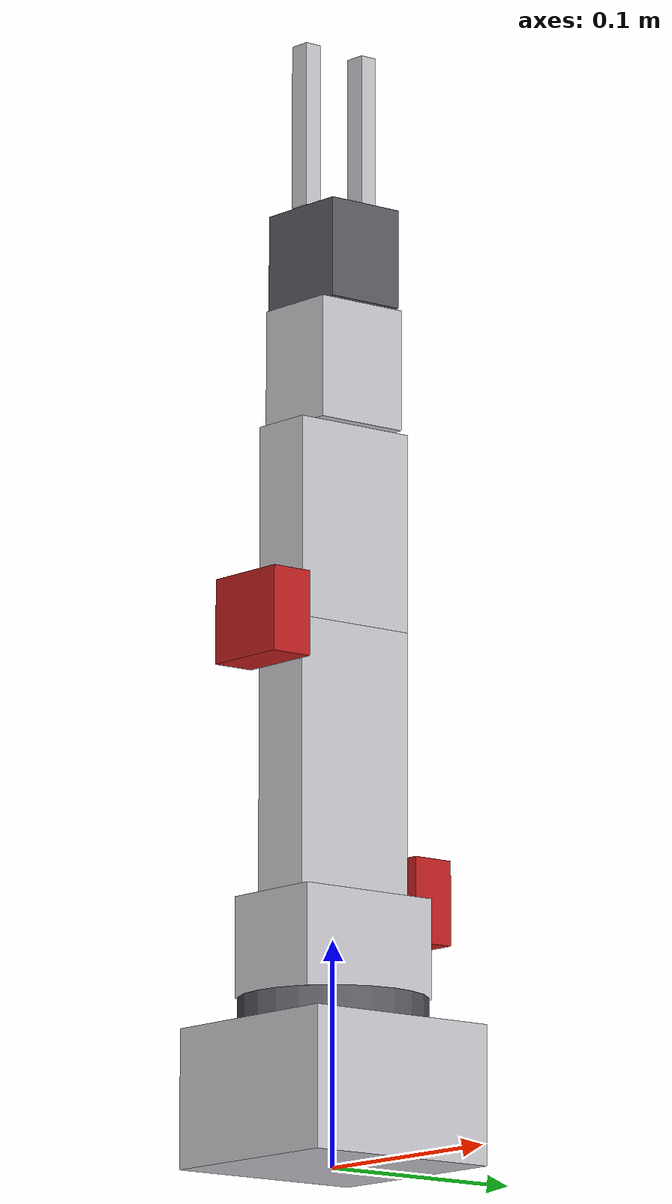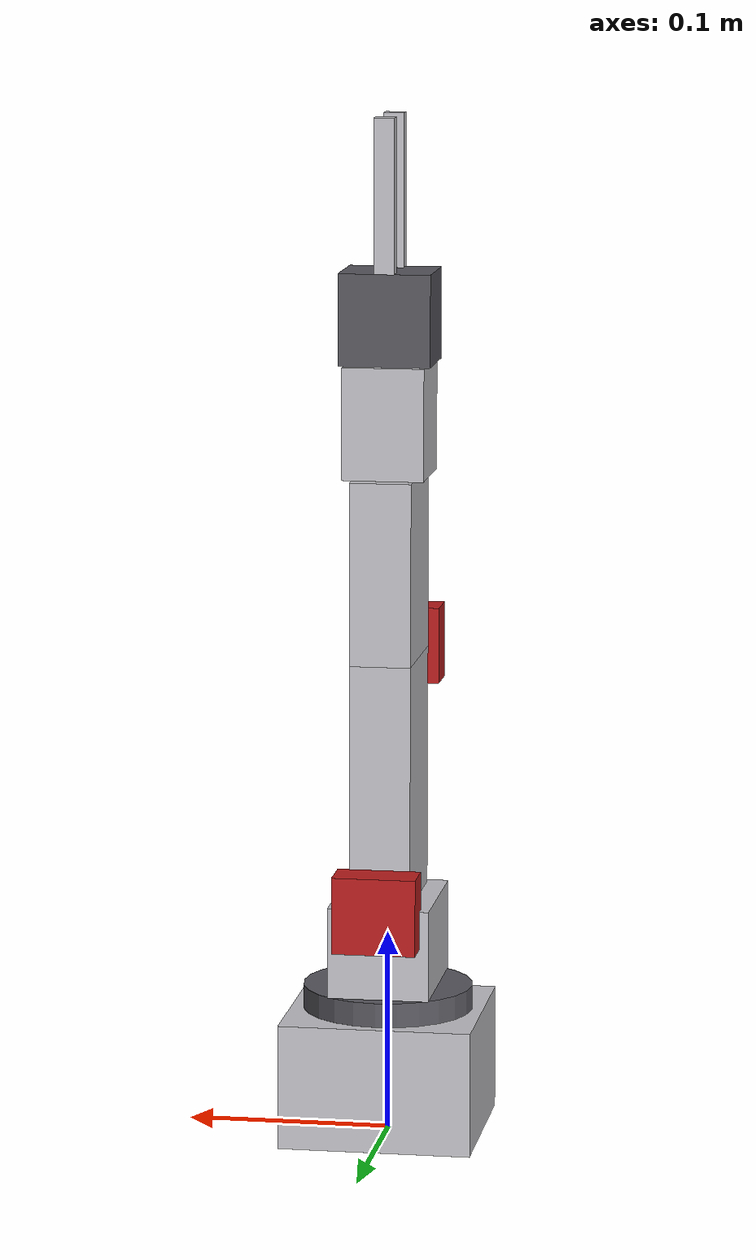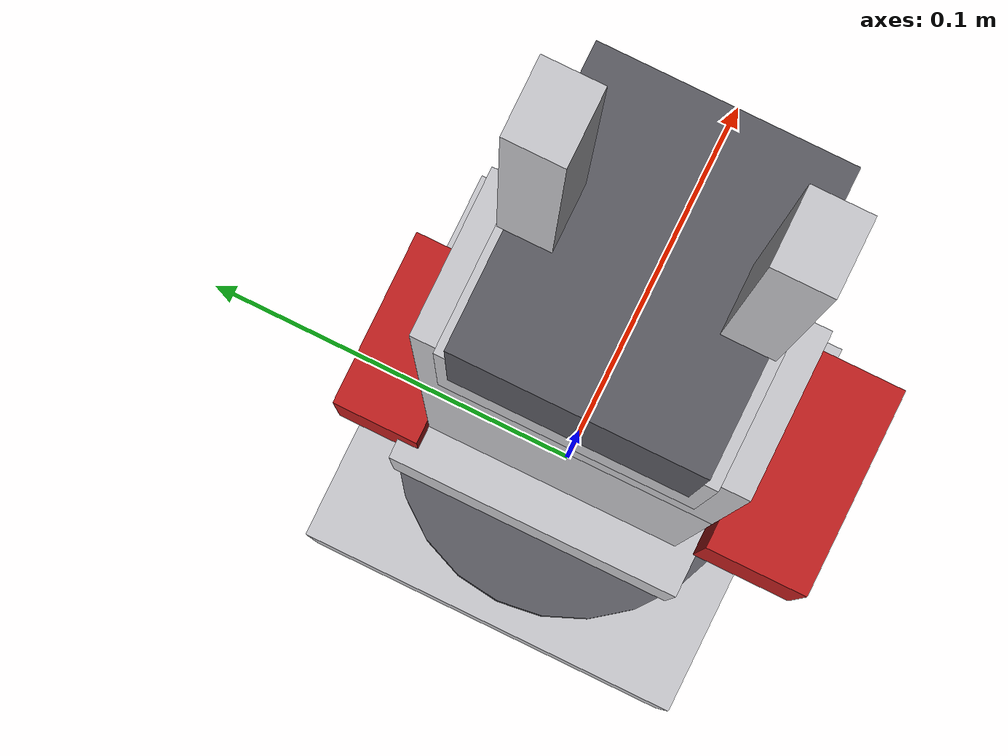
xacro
<?xml version="1.0"?>
<!--
  Un solo brazo 6DOF sobre pedestal — para estudiar/calibrar el brazo aislado
  (igual que quedará montado en la mesa cuando llegue el kit).
  Uso: display.launch.py model:=arm_standalone.urdf.xacro
-->
<robot name="waver_arm_standalone" xmlns:xacro="http://www.ros.org/wiki/xacro">

  <xacro:include filename="$(find waver_arm_description)/urdf/materials.xacro"/>
  <xacro:include filename="$(find waver_arm_description)/urdf/arm_6dof.xacro"/>

  <link name="world"/>

  <xacro:waver_arm prefix="arm_" parent="world">
    <origin xyz="0 0 0" rpy="0 0 0"/>
  </xacro:waver_arm>

</robot>

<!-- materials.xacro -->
<robot xmlns:xacro="http://www.ros.org/wiki/xacro">
  <!-- Paleta del gemelo digital WAVER CRAB -->
  <material name="aluminio">
    <color rgba="0.78 0.78 0.80 1.0"/>
  </material>
  <material name="servo_rojo">
    <color rgba="0.75 0.12 0.12 1.0"/>
  </material>
  <material name="negro_mate">
    <color rgba="0.15 0.15 0.15 1.0"/>
  </material>
  <material name="gris_oscuro">
    <color rgba="0.35 0.35 0.38 1.0"/>
  </material>
  <material name="teal_waver">
    <color rgba="0.11 0.62 0.46 1.0"/>
  </material>
  <material name="purpura_l16">
    <color rgba="0.50 0.47 0.87 1.0"/>
  </material>
</robot>

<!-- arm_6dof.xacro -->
<robot xmlns:xacro="http://www.ros.org/wiki/xacro">

  <!-- ==================== dimensiones [calibrar] ==================== -->
  <xacro:property name="base_lx"        value="0.095"/>  <!-- caja base (aloja servo A) -->
  <xacro:property name="base_ly"        value="0.095"/>
  <xacro:property name="base_lz"        value="0.062"/>
  <xacro:property name="turntable_r"    value="0.042"/>  <!-- disco sobre rodamiento -->
  <xacro:property name="turntable_h"    value="0.012"/>
  <xacro:property name="shoulder_off_z" value="0.045"/>  <!-- disco -> eje hombro -->
  <xacro:property name="upper_len"      value="0.120"/>  <!-- hombro -> codo -->
  <xacro:property name="fore_len"       value="0.090"/>  <!-- codo -> muñeca pitch -->
  <xacro:property name="wrist_len"      value="0.055"/>  <!-- muñeca pitch -> brida roll -->
  <xacro:property name="gripper_base_h" value="0.045"/>  <!-- brida roll -> eje dedos -->
  <xacro:property name="finger_len"     value="0.075"/>  <!-- dedo dentado -->
  <xacro:property name="finger_sep"     value="0.024"/>  <!-- separación ejes engranaje -->
  <xacro:property name="plate_w"        value="0.030"/>  <!-- ancho placas eslabón -->
  <xacro:property name="plate_t"        value="0.060"/>  <!-- fondo par de placas -->

  <!-- servo 40x20 clase MG996R -->
  <xacro:property name="servo_lx" value="0.041"/>
  <xacro:property name="servo_ly" value="0.020"/>
  <xacro:property name="servo_lz" value="0.038"/>

  <!-- limites: servos de 180 grados -> +/- 90 desde el centro -->
  <xacro:property name="lim"        value="${pi/2}"/>
  <xacro:property name="effort_nm"  value="1.0"/>   <!-- MG996R ~10 kg.cm = 0.98 N.m -->
  <xacro:property name="vel_rads"   value="3.0"/>   <!-- ~0.17s/60deg con margen -->

  <!-- ==================== macros de inercia ==================== -->
  <xacro:macro name="inercia_caja" params="m x y z">
    <inertial>
      <mass value="${m}"/>
      <inertia ixx="${m*(y*y+z*z)/12.0}" iyy="${m*(x*x+z*z)/12.0}"
               izz="${m*(x*x+y*y)/12.0}" ixy="0" ixz="0" iyz="0"/>
    </inertial>
  </xacro:macro>
  <xacro:macro name="inercia_cilindro" params="m r h">
    <inertial>
      <mass value="${m}"/>
      <inertia ixx="${m*(3*r*r+h*h)/12.0}" iyy="${m*(3*r*r+h*h)/12.0}"
               izz="${m*r*r/2.0}" ixy="0" ixz="0" iyz="0"/>
    </inertial>
  </xacro:macro>

  <!-- visual de un servo 40x20 (caja roja) -->
  <xacro:macro name="servo_visual" params="xyz rpy:='0 0 0'">
    <visual>
      <origin xyz="${xyz}" rpy="${rpy}"/>
      <geometry><box size="${servo_lx} ${servo_ly} ${servo_lz}"/></geometry>
      <material name="servo_rojo"/>
    </visual>
  </xacro:macro>

  <!-- ==================== la macro del brazo ==================== -->
  <xacro:macro name="waver_arm" params="prefix parent *origin">

    <!-- anclaje al padre (placa-torso) -->
    <joint name="${prefix}mount_joint" type="fixed">
      <parent link="${parent}"/>
      <child link="${prefix}base_link"/>
      <xacro:insert_block name="origin"/>
    </joint>

    <!-- base: caja metalica con servo A y electronica -->
    <link name="${prefix}base_link">
      <visual>
        <origin xyz="0 0 ${base_lz/2}"/>
        <geometry><box size="${base_lx} ${base_ly} ${base_lz}"/></geometry>
        <material name="aluminio"/>
      </visual>
      <collision>
        <origin xyz="0 0 ${base_lz/2}"/>
        <geometry><box size="${base_lx} ${base_ly} ${base_lz}"/></geometry>
      </collision>
      <xacro:inercia_caja m="0.25" x="${base_lx}" y="${base_ly}" z="${base_lz}"/>
    </link>

    <!-- A: yaw de base sobre rodamiento -->
    <joint name="${prefix}yaw_joint" type="revolute">
      <parent link="${prefix}base_link"/>
      <child link="${prefix}turntable_link"/>
      <origin xyz="0 0 ${base_lz}"/>
      <axis xyz="0 0 1"/>
      <limit lower="${-lim}" upper="${lim}" effort="${effort_nm}" velocity="${vel_rads}"/>
    </joint>

    <link name="${prefix}turntable_link">
      <visual>
        <origin xyz="0 0 ${turntable_h/2}"/>
        <geometry><cylinder radius="${turntable_r}" length="${turntable_h}"/></geometry>
        <material name="gris_oscuro"/>
      </visual>
      <!-- horquilla del hombro -->
      <visual>
        <origin xyz="0 0 ${turntable_h + shoulder_off_z/2}"/>
        <geometry><box size="0.050 0.070 ${shoulder_off_z}"/></geometry>
        <material name="aluminio"/>
      </visual>
      <collision>
        <origin xyz="0 0 ${(turntable_h + shoulder_off_z)/2}"/>
        <geometry><box size="0.070 0.080 ${turntable_h + shoulder_off_z}"/></geometry>
      </collision>
      <xacro:inercia_caja m="0.12" x="0.07" y="0.08" z="${turntable_h + shoulder_off_z}"/>
    </link>

    <!-- B: hombro -->
    <joint name="${prefix}shoulder_joint" type="revolute">
      <parent link="${prefix}turntable_link"/>
      <child link="${prefix}upper_arm_link"/>
      <origin xyz="0 0 ${turntable_h + shoulder_off_z}"/>
      <axis xyz="0 1 0"/>
      <limit lower="${-lim}" upper="${lim}" effort="${effort_nm}" velocity="${vel_rads}"/>
    </joint>

    <link name="${prefix}upper_arm_link">
      <visual>
        <origin xyz="0 0 ${upper_len/2}"/>
        <geometry><box size="${plate_w} ${plate_t} ${upper_len}"/></geometry>
        <material name="aluminio"/>
      </visual>
      <xacro:servo_visual xyz="0 ${plate_t/2 + servo_ly/2} 0"/>
      <collision>
        <origin xyz="0 0 ${upper_len/2}"/>
        <geometry><box size="${plate_w} ${plate_t + 2*servo_ly} ${upper_len}"/></geometry>
      </collision>
      <xacro:inercia_caja m="0.18" x="${plate_w}" y="${plate_t}" z="${upper_len}"/>
    </link>

    <!-- C: codo (bloque doble servo del manual, pag. 15) -->
    <joint name="${prefix}elbow_joint" type="revolute">
      <parent link="${prefix}upper_arm_link"/>
      <child link="${prefix}forearm_link"/>
      <origin xyz="0 0 ${upper_len}"/>
      <axis xyz="0 1 0"/>
      <limit lower="${-lim}" upper="${lim}" effort="${effort_nm}" velocity="${vel_rads}"/>
    </joint>

    <link name="${prefix}forearm_link">
      <visual>
        <origin xyz="0 0 ${fore_len/2}"/>
        <geometry><box size="${plate_w} ${plate_t} ${fore_len}"/></geometry>
        <material name="aluminio"/>
      </visual>
      <xacro:servo_visual xyz="0 ${-(plate_t/2 + servo_ly/2)} 0"/>
      <collision>
        <origin xyz="0 0 ${fore_len/2}"/>
        <geometry><box size="${plate_w} ${plate_t + 2*servo_ly} ${fore_len}"/></geometry>
      </collision>
      <xacro:inercia_caja m="0.16" x="${plate_w}" y="${plate_t}" z="${fore_len}"/>
    </link>

    <!-- D: muñeca pitch -->
    <joint name="${prefix}wrist_pitch_joint" type="revolute">
      <parent link="${prefix}forearm_link"/>
      <child link="${prefix}wrist_link"/>
      <origin xyz="0 0 ${fore_len}"/>
      <axis xyz="0 1 0"/>
      <limit lower="${-lim}" upper="${lim}" effort="${effort_nm}" velocity="${vel_rads}"/>
    </joint>

    <link name="${prefix}wrist_link">
      <visual>
        <origin xyz="0 0 ${wrist_len/2}"/>
        <geometry><box size="0.040 0.045 ${wrist_len}"/></geometry>
        <material name="aluminio"/>
      </visual>
      <collision>
        <origin xyz="0 0 ${wrist_len/2}"/>
        <geometry><box size="0.045 0.050 ${wrist_len}"/></geometry>
      </collision>
      <xacro:inercia_caja m="0.09" x="0.04" y="0.045" z="${wrist_len}"/>
    </link>

    <!-- E: muñeca roll (gira la garra sobre el eje del brazo) -->
    <joint name="${prefix}wrist_roll_joint" type="revolute">
      <parent link="${prefix}wrist_link"/>
      <child link="${prefix}gripper_base_link"/>
      <origin xyz="0 0 ${wrist_len}"/>
      <axis xyz="0 0 1"/>
      <limit lower="${-lim}" upper="${lim}" effort="${effort_nm}" velocity="${vel_rads}"/>
    </joint>

    <link name="${prefix}gripper_base_link">
      <visual>
        <origin xyz="0 0 ${gripper_base_h/2}"/>
        <geometry><box size="0.045 0.038 ${gripper_base_h}"/></geometry>
        <material name="gris_oscuro"/>
      </visual>
      <collision>
        <origin xyz="0 0 ${gripper_base_h/2}"/>
        <geometry><box size="0.045 0.038 ${gripper_base_h}"/></geometry>
      </collision>
      <xacro:inercia_caja m="0.10" x="0.045" y="0.038" z="${gripper_base_h}"/>
    </link>

    <!-- F: garra de engranajes — dedo izquierdo actuado, derecho espejo (mimic) -->
    <joint name="${prefix}finger_l_joint" type="revolute">
      <parent link="${prefix}gripper_base_link"/>
      <child link="${prefix}finger_l_link"/>
      <origin xyz="0 ${finger_sep/2} ${gripper_base_h}"/>
      <axis xyz="1 0 0"/>
      <limit lower="0.0" upper="1.0" effort="${effort_nm}" velocity="${vel_rads}"/>
    </joint>
    <link name="${prefix}finger_l_link">
      <visual>
        <origin xyz="0 0.004 ${finger_len/2}"/>
        <geometry><box size="0.010 0.008 ${finger_len}"/></geometry>
        <material name="aluminio"/>
      </visual>
      <collision>
        <origin xyz="0 0.004 ${finger_len/2}"/>
        <geometry><box size="0.010 0.008 ${finger_len}"/></geometry>
      </collision>
      <xacro:inercia_caja m="0.02" x="0.01" y="0.008" z="${finger_len}"/>
    </link>

    <joint name="${prefix}finger_r_joint" type="revolute">
      <parent link="${prefix}gripper_base_link"/>
      <child link="${prefix}finger_r_link"/>
      <origin xyz="0 ${-finger_sep/2} ${gripper_base_h}"/>
      <axis xyz="1 0 0"/>
      <limit lower="-1.0" upper="0.0" effort="${effort_nm}" velocity="${vel_rads}"/>
      <mimic joint="${prefix}finger_l_joint" multiplier="-1.0"/>
    </joint>
    <link name="${prefix}finger_r_link">
      <visual>
        <origin xyz="0 -0.004 ${finger_len/2}"/>
        <geometry><box size="0.010 0.008 ${finger_len}"/></geometry>
        <material name="aluminio"/>
      </visual>
      <collision>
        <origin xyz="0 -0.004 ${finger_len/2}"/>
        <geometry><box size="0.010 0.008 ${finger_len}"/></geometry>
      </collision>
      <xacro:inercia_caja m="0.02" x="0.01" y="0.008" z="${finger_len}"/>
    </link>

    <!-- frame de herramienta (punta de la garra, objetivo de IK/MoveIt2) -->
    <joint name="${prefix}tool0_joint" type="fixed">
      <parent link="${prefix}gripper_base_link"/>
      <child link="${prefix}tool0"/>
      <origin xyz="0 0 ${gripper_base_h + finger_len}"/>
    </joint>
    <link name="${prefix}tool0"/>

  </xacro:macro>
</robot>
